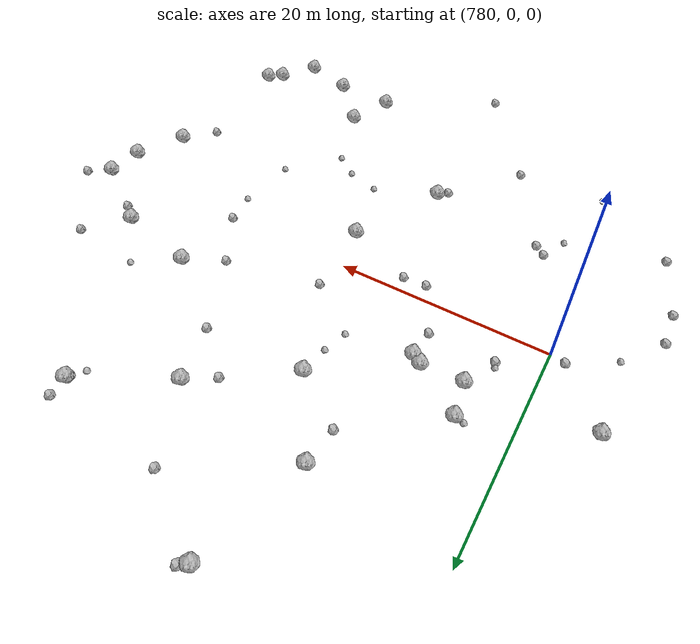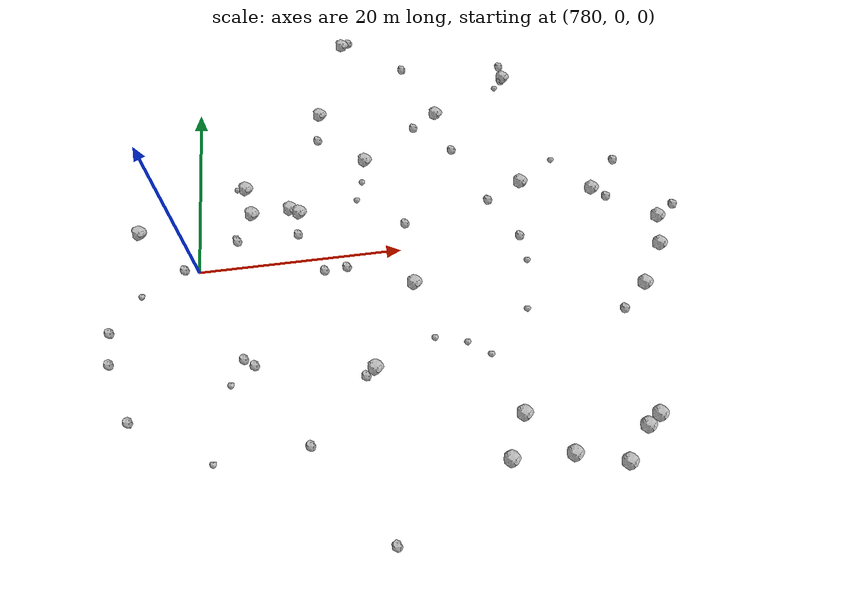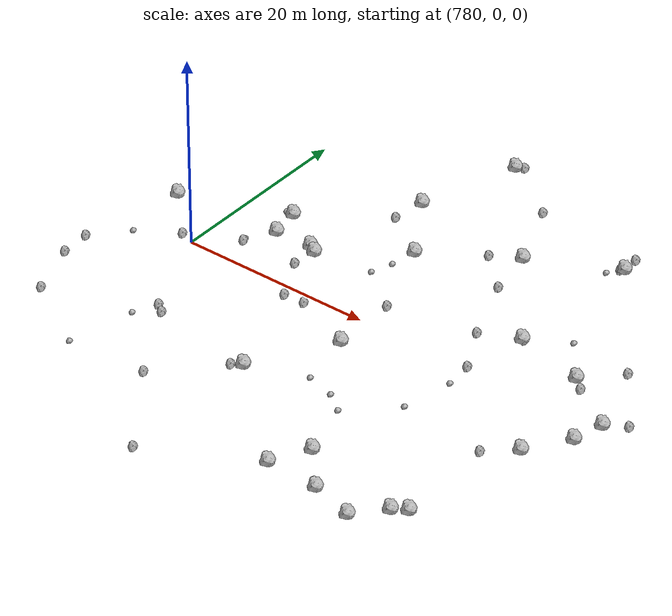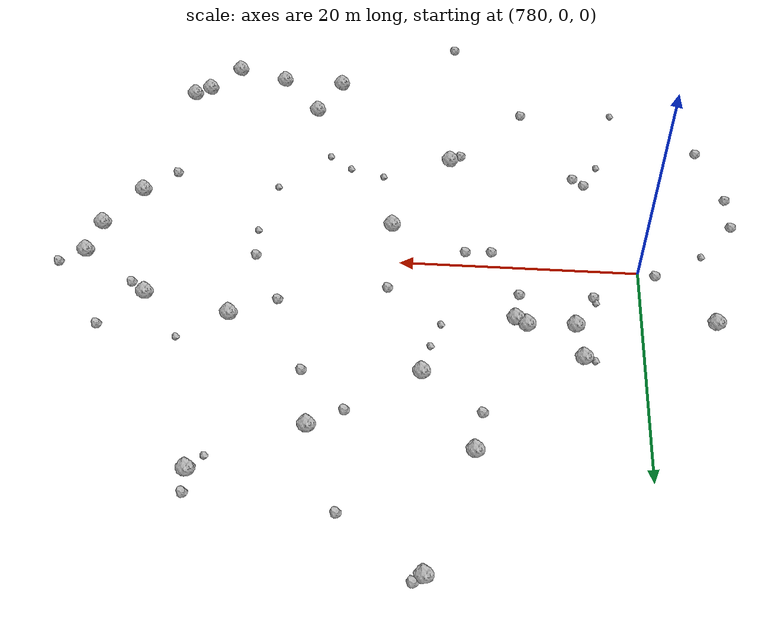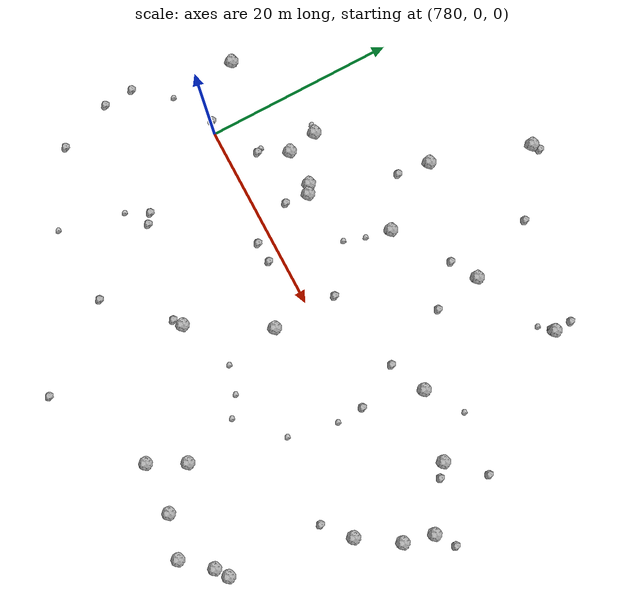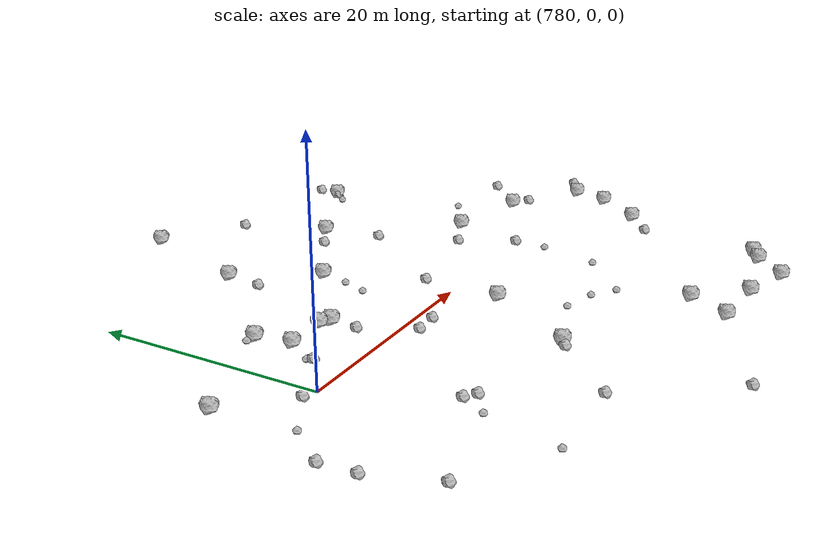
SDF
<sdf version="1.6">
 <world name="default">
  <include><uri>model://sun</uri></include>
  <model name="rock1_20_4">
   <include><uri>model://rock1</uri><pose>808.7840341613947 -18.01013476553765 0.5 0 0 0</pose></include>
  </model>
  <model name="rock1_20_5">
   <include><uri>model://rock1</uri><pose>812.3353406693171 -21.998033641612523 0.5 0 0 0</pose></include>
  </model>
  <model name="rock1_20_6">
   <include><uri>model://rock1</uri><pose>823.1331276013443 -6.829074729415211 0.5 0 0 0</pose></include>
  </model>
  <model name="rock1_20_7">
   <include><uri>model://rock1</uri><pose>800.8769263650047 -3.9707535248717356 0.5 0 0 0</pose></include>
  </model>
  <model name="rock1_20_8">
   <include><uri>model://rock1</uri><pose>814.5280293460102 21.063724130591666 0.5 0 0 0</pose></include>
  </model>
  <model name="rock1_20_9">
   <include><uri>model://rock1</uri><pose>784.8278285693372 9.161870701697872 0.5 0 0 0</pose></include>
  </model>
  <model name="rock1_20_10">
   <include><uri>model://rock1</uri><pose>796.5613421162782 28.46151445004938 0.5 0 0 0</pose></include>
  </model>
  <model name="rock1_20_11">
   <include><uri>model://rock1</uri><pose>825.8842996987762 -2.733894750699964 0.5 0 0 0</pose></include>
  </model>
  <model name="rock1_20_12">
   <include><uri>model://rock1</uri><pose>806.05119511301 16.732937553141866 0.5 0 0 0</pose></include>
  </model>
  <model name="rock1_20_13">
   <include><uri>model://rock1</uri><pose>774.0536297744376 5.101839204007895 0.5 0 0 0</pose></include>
  </model>
  <model name="rock1_20_14">
   <include><uri>model://rock1</uri><pose>797.5684711215624 11.294633936991033 0.5 0 0 0</pose></include>
  </model>
  <model name="rock1_20_15">
   <include><uri>model://rock1</uri><pose>820.7982871700248 4.681515203639286 0.5 0 0 0</pose></include>
  </model>
  <model name="rock1_20_16">
   <include><uri>model://rock1</uri><pose>793.2083772799853 18.161188951475168 0.5 0 0 0</pose></include>
  </model>
  <model name="rock1_20_17">
   <include><uri>model://rock1</uri><pose>813.5451525637317 6.442050923195048 0.5 0 0 0</pose></include>
  </model>
  <model name="rock1_20_18">
   <include><uri>model://rock1</uri><pose>789.3163214463709 6.123249406068538 0.5 0 0 0</pose></include>
  </model>
  <model name="rock1_20_19">
   <include><uri>model://rock1</uri><pose>816.8027439118393 -23.27171406454012 0.5 0 0 0</pose></include>
  </model>
  <model name="rock1_20_20">
   <include><uri>model://rock1</uri><pose>820.6261682273512 -19.57115365492495 0.5 0 0 0</pose></include>
  </model>
  <model name="rock1_20_21">
   <include><uri>model://rock1</uri><pose>826.6574882457071 0.4650840065738109 0.5 0 0 0</pose></include>
  </model>
  <model name="rock1_20_22">
   <include><uri>model://rock1</uri><pose>796.1812463752949 -12.104203053661557 0.5 0 0 0</pose></include>
  </model>
  <model name="rock1_20_23">
   <include><uri>model://rock1</uri><pose>790.2275486114114 5.560133570331324 0.5 0 0 0</pose></include>
  </model>
  <model name="rock1_20_24">
   <include><uri>model://rock1</uri><pose>785.3833348704059 5.983890621691174 0.5 0 0 0</pose></include>
  </model>
  <model name="rock1_20_25">
   <include><uri>model://rock1</uri><pose>819.2937920356479 -20.439195642403025 0.5 0 0 0</pose></include>
  </model>
  <model name="rock1_20_26">
   <include><uri>model://rock1</uri><pose>806.8506063088678 -21.78486244974843 0.5 0 0 0</pose></include>
  </model>
  <model name="rock2_20_0">
   <include><uri>model://rock2</uri><pose>796.2395088104729 -27.363121595763683 0.3 0 0 0</pose></include>
  </model>
  <model name="rock2_20_1">
   <include><uri>model://rock2</uri><pose>792.2858829496796 -1.4033467367941945 0.3 0 0 0</pose></include>
  </model>
  <model name="rock2_20_2">
   <include><uri>model://rock2</uri><pose>771.7572542717445 -5.497287150175271 0.3 0 0 0</pose></include>
  </model>
  <model name="rock2_20_3">
   <include><uri>model://rock2</uri><pose>784.2518770173474 -9.718877234030284 0.3 0 0 0</pose></include>
  </model>
  <model name="rock2_20_4">
   <include><uri>model://rock2</uri><pose>789.9291405454774 3.066200775385994 0.3 0 0 0</pose></include>
  </model>
  <model name="rock2_20_5">
   <include><uri>model://rock2</uri><pose>773.9990589814915 -14.321061265843912 0.3 0 0 0</pose></include>
  </model>
  <model name="rock2_20_6">
   <include><uri>model://rock2</uri><pose>820.4323592161968 -9.159339576484417 0.3 0 0 0</pose></include>
  </model>
  <model name="rock2_20_7">
   <include><uri>model://rock2</uri><pose>814.4554489151446 22.982235740170943 0.3 0 0 0</pose></include>
  </model>
  <model name="rock2_20_8">
   <include><uri>model://rock2</uri><pose>809.7330018147541 4.735165447951523 0.3 0 0 0</pose></include>
  </model>
  <model name="rock2_20_9">
   <include><uri>model://rock2</uri><pose>785.2086488363327 -10.44659087182934 0.3 0 0 0</pose></include>
  </model>
  <model name="rock2_20_10">
   <include><uri>model://rock2</uri><pose>803.3089138032258 15.168924343931522 0.3 0 0 0</pose></include>
  </model>
  <model name="rock2_20_11">
   <include><uri>model://rock2</uri><pose>797.3342407641269 28.96858177153983 0.3 0 0 0</pose></include>
  </model>
  <model name="rock2_20_12">
   <include><uri>model://rock2</uri><pose>800.8029035466764 2.9700138078400897 0.3 0 0 0</pose></include>
  </model>
  <model name="rock2_20_13">
   <include><uri>model://rock2</uri><pose>807.0158030281401 11.647293729473226 0.3 0 0 0</pose></include>
  </model>
  <model name="rock2_20_14">
   <include><uri>model://rock2</uri><pose>783.8278568558195 2.999638958083331 0.3 0 0 0</pose></include>
  </model>
  <model name="rock2_20_15">
   <include><uri>model://rock2</uri><pose>803.1266431532745 23.95833910608487 0.3 0 0 0</pose></include>
  </model>
  <model name="rock2_20_16">
   <include><uri>model://rock2</uri><pose>789.8328005800154 -18.4149190851378 0.3 0 0 0</pose></include>
  </model>
  <model name="rock2_20_17">
   <include><uri>model://rock2</uri><pose>795.2339853554124 -12.722372103960844 0.3 0 0 0</pose></include>
  </model>
  <model name="rock2_20_18">
   <include><uri>model://rock2</uri><pose>814.2378604611209 20.823419157012886 0.3 0 0 0</pose></include>
  </model>
  <model name="rock2_20_19">
   <include><uri>model://rock2</uri><pose>822.0533928129612 3.632314948928375 0.3 0 0 0</pose></include>
  </model>
  <model name="rock2_20_20">
   <include><uri>model://rock2</uri><pose>792.7074581139863 14.764412656315343 0.3 0 0 0</pose></include>
  </model>
  <model name="rock2_20_21">
   <include><uri>model://rock2</uri><pose>824.0520667240248 8.118757722912918 0.3 0 0 0</pose></include>
  </model>
  <model name="rock2_20_22">
   <include><uri>model://rock2</uri><pose>794.4903141567986 -1.2965726598742862 0.3 0 0 0</pose></include>
  </model>
  <model name="rock2_20_23">
   <include><uri>model://rock2</uri><pose>828.6437296049661 1.7789783151248422 0.3 0 0 0</pose></include>
  </model>
  <model name="rock2_20_24">
   <include><uri>model://rock2</uri><pose>778.6398671412604 0.3675457072802182 0.3 0 0 0</pose></include>
  </model>
  <model name="rock2_20_25">
   <include><uri>model://rock2</uri><pose>812.1457617265091 0.07262491525982284 0.3 0 0 0</pose></include>
  </model>
  <model name="rock2_20_26">
   <include><uri>model://rock2</uri><pose>771.9402965816499 -8.661049504716111 0.3 0 0 0</pose></include>
  </model>
  <model name="rock3_20_0">
   <include><uri>model://rock3</uri><pose>813.3360551459416 19.75414074957729 0.2 0 0 0</pose></include>
  </model>
  <model name="rock3_20_1">
   <include><uri>model://rock3</uri><pose>811.1981096736729 -8.013313337607137 0.2 0 0 0</pose></include>
  </model>
  <model name="rock3_20_2">
   <include><uri>model://rock3</uri><pose>796.9627179314248 8.645969361985784 0.2 0 0 0</pose></include>
  </model>
  <model name="rock3_20_3">
   <include><uri>model://rock3</uri><pose>817.4212308637375 8.953634626470404 0.2 0 0 0</pose></include>
  </model>
  <model name="rock3_20_4">
   <include><uri>model://rock3</uri><pose>783.6263440735662 3.467242917188358 0.2 0 0 0</pose></include>
  </model>
  <model name="rock3_20_5">
   <include><uri>model://rock3</uri><pose>796.2093223258764 6.444552826264761 0.2 0 0 0</pose></include>
  </model>
  <model name="rock3_20_6">
   <include><uri>model://rock3</uri><pose>774.5586918926939 -2.045170739314063 0.2 0 0 0</pose></include>
  </model>
  <model name="rock3_20_7">
   <include><uri>model://rock3</uri><pose>783.8877367245094 9.30349198701505 0.2 0 0 0</pose></include>
  </model>
  <model name="rock3_20_8">
   <include><uri>model://rock3</uri><pose>813.8271486185199 6.268082329885075 0.2 0 0 0</pose></include>
  </model>
  <model name="rock3_20_9">
   <include><uri>model://rock3</uri><pose>804.9457055580381 -10.650572749754016 0.2 0 0 0</pose></include>
  </model>
  <model name="rock3_20_10">
   <include><uri>model://rock3</uri><pose>781.4434459042786 -18.949249252000925 0.2 0 0 0</pose></include>
  </model>
  <model name="rock3_20_11">
   <include><uri>model://rock3</uri><pose>806.9219064169554 -12.10534252219895 0.2 0 0 0</pose></include>
  </model>
  <model name="rock3_20_12">
   <include><uri>model://rock3</uri><pose>801.9872069509892 -9.832477918014831 0.2 0 0 0</pose></include>
  </model>
  <model name="rock3_20_13">
   <include><uri>model://rock3</uri><pose>812.2954358103552 -2.800486051767585 0.2 0 0 0</pose></include>
  </model>
  <model name="rock3_20_14">
   <include><uri>model://rock3</uri><pose>783.0157706504565 -12.083118163506342 0.2 0 0 0</pose></include>
  </model>
 </world>
</sdf>
